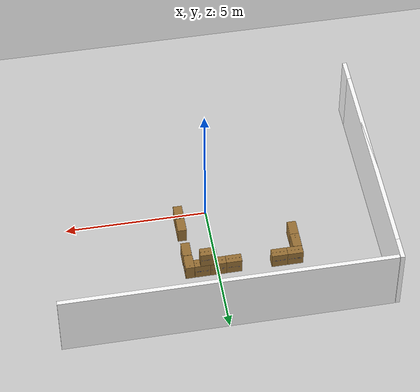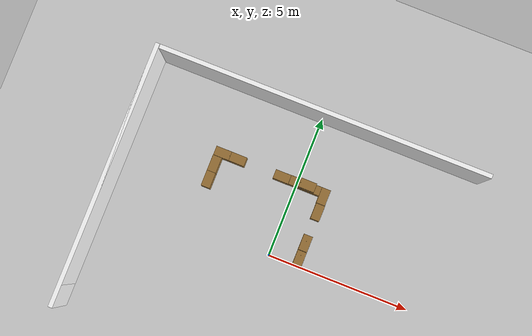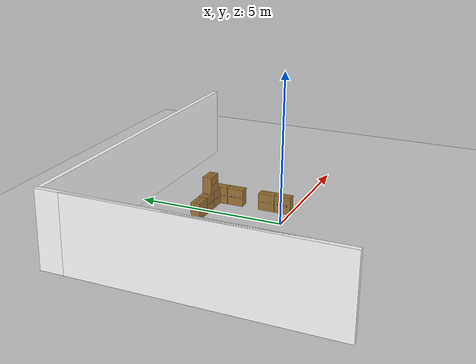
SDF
<sdf version="1.9">
 <world name="default">
  <model name="ground_plane">
   <static>true</static>
   <link name="link">
    <collision name="collision">
     <geometry><plane><normal>0 0 1</normal><size>100 100</size></plane></geometry>
    </collision>
    <visual name="visual">
     <geometry><plane><normal>0 0 1</normal><size>100 100</size></plane></geometry>
     <material>
      <ambient>0.8 0.8 0.8 1</ambient>
      <diffuse>0.8 0.8 0.8 1</diffuse>
      <specular>0.8 0.8 0.8 1</specular>
     </material>
    </visual>
    <inertial>
     <mass>1</mass>
     <inertia><ixx>1</ixx><ixy>0</ixy><ixz>0</ixz><iyy>1</iyy><iyz>0</iyz><izz>1</izz></inertia>
    </inertial>
   </link>
  </model>
  <model name="office_env_w2">
   <pose>0 4.95791 1.25 0 -0 0</pose>
   <link name="Wall_10">
    <visual name="Wall_10_Visual_0">
     <geometry><box><size>11.466 0.15 2.5</size></box></geometry>
     <material><ambient>0.2 0.2 0.2 1</ambient><diffuse>1 1 1 1</diffuse><specular>1 1 1 1</specular></material>
     <meta><layer>0</layer></meta>
    </visual>
    <collision name="Wall_10_Collision_0"><geometry><box><size>11.466 0.15 2.5</size></box></geometry></collision>
    <inertial>
     <mass>1</mass>
     <inertia><ixx>1</ixx><ixy>0</ixy><ixz>0</ixz><iyy>1</iyy><iyz>0</iyz><izz>1</izz></inertia>
    </inertial>
   </link>
   <static>true</static>
  </model>
  <model name="office_env_w_clone">
   <pose>-5.82885 0.866541 1.25 0 -0 1.57</pose>
   <link name="Wall_10">
    <visual name="Wall_10_Visual_0">
     <geometry><box><size>8.324 0.15 2.5</size></box></geometry>
     <material><ambient>0.2 0.2 0.2 1</ambient><diffuse>1 1 1 1</diffuse><specular>1 1 1 1</specular></material>
     <meta><layer>0</layer></meta>
    </visual>
    <collision name="Wall_10_Collision_0"><geometry><box><size>8.324 0.15 2.5</size></box></geometry></collision>
    <inertial>
     <mass>1</mass>
     <inertia><ixx>1</ixx><ixy>0</ixy><ixz>0</ixz><iyy>1</iyy><iyz>0</iyz><izz>1</izz></inertia>
    </inertial>
   </link>
   <static>true</static>
  </model>
  <model name="neobotix_box_3_1_1_1_1_1_1_1">
   <link name="link_1">
    <visual name="visual">
     <geometry>
      <mesh>
       <uri>file:///home/pradheep/iron_ws/src/neo_simulation2/models/neo_office_box/model://neo_office_box/meshes/model.dae</uri>
       <scale>0.1 0.1 0.1</scale>
      </mesh>
     </geometry>
    </visual>
    <collision name="collision">
     <geometry>
      <mesh>
       <uri>file:///home/pradheep/iron_ws/src/neo_simulation2/models/neo_office_box/model://neo_office_box/meshes/model.dae</uri>
       <scale>0.1 0.1 0.1</scale>
      </mesh>
     </geometry>
    </collision>
    <inertial>
     <mass>1</mass>
     <inertia><ixx>1</ixx><ixy>0</ixy><ixz>0</ixz><iyy>1</iyy><iyz>0</iyz><izz>1</izz></inertia>
    </inertial>
   </link>
   <pose>1.00198 0.272766 0.2899 0 -0 0</pose>
   <static>false</static>
  </model>
  <model name="neobotix_box_3_1_1_1_1_1_1_1_2_1">
   <link name="link_1">
    <visual name="visual">
     <geometry>
      <mesh>
       <uri>file:///home/pradheep/iron_ws/src/neo_simulation2/models/neo_office_box/model://neo_office_box/meshes/model.dae</uri>
       <scale>0.1 0.1 0.1</scale>
      </mesh>
     </geometry>
    </visual>
    <collision name="collision">
     <geometry>
      <mesh>
       <uri>file:///home/pradheep/iron_ws/src/neo_simulation2/models/neo_office_box/model://neo_office_box/meshes/model.dae</uri>
       <scale>0.1 0.1 0.1</scale>
      </mesh>
     </geometry>
    </collision>
    <inertial>
     <mass>1</mass>
     <inertia><ixx>1</ixx><ixy>0</ixy><ixz>0</ixz><iyy>1</iyy><iyz>0</iyz><izz>1</izz></inertia>
    </inertial>
   </link>
   <pose>1.00198 0.838156 0.2899 0 -0 0</pose>
   <static>false</static>
  </model>
  <model name="neobotix_box_3_1_1_1_1_1_1_1_2_2">
   <link name="link_1">
    <visual name="visual">
     <geometry>
      <mesh>
       <uri>file:///home/pradheep/iron_ws/src/neo_simulation2/models/neo_office_box/model://neo_office_box/meshes/model.dae</uri>
       <scale>0.1 0.1 0.1</scale>
      </mesh>
     </geometry>
    </visual>
    <collision name="collision">
     <geometry>
      <mesh>
       <uri>file:///home/pradheep/iron_ws/src/neo_simulation2/models/neo_office_box/model://neo_office_box/meshes/model.dae</uri>
       <scale>0.1 0.1 0.1</scale>
      </mesh>
     </geometry>
    </collision>
    <inertial>
     <mass>1</mass>
     <inertia><ixx>1</ixx><ixy>0</ixy><ixz>0</ixz><iyy>1</iyy><iyz>0</iyz><izz>1</izz></inertia>
    </inertial>
   </link>
   <pose>1.00149 1.95419 0.2899 0 -0 0</pose>
   <static>false</static>
  </model>
  <model name="neobotix_box_3_1_1_1_1_1_1_1_2_2_1">
   <link name="link_1">
    <visual name="visual">
     <geometry>
      <mesh>
       <uri>file:///home/pradheep/iron_ws/src/neo_simulation2/models/neo_office_box/model://neo_office_box/meshes/model.dae</uri>
       <scale>0.1 0.1 0.1</scale>
      </mesh>
     </geometry>
    </visual>
    <collision name="collision">
     <geometry>
      <mesh>
       <uri>file:///home/pradheep/iron_ws/src/neo_simulation2/models/neo_office_box/model://neo_office_box/meshes/model.dae</uri>
       <scale>0.1 0.1 0.1</scale>
      </mesh>
     </geometry>
    </collision>
    <inertial>
     <mass>1</mass>
     <inertia><ixx>1</ixx><ixy>0</ixy><ixz>0</ixz><iyy>1</iyy><iyz>0</iyz><izz>1</izz></inertia>
    </inertial>
   </link>
   <pose>0.993277 2.5178 0.2899 0 -0 0</pose>
   <static>false</static>
  </model>
  <model name="neobotix_box_3_2_1_1">
   <link name="link_1">
    <visual name="visual">
     <geometry>
      <mesh>
       <uri>file:///home/pradheep/iron_ws/src/neo_simulation2/models/neo_office_box/model://neo_office_box/meshes/model.dae</uri>
       <scale>0.1 0.1 0.1</scale>
      </mesh>
     </geometry>
    </visual>
    <collision name="collision">
     <geometry>
      <mesh>
       <uri>file:///home/pradheep/iron_ws/src/neo_simulation2/models/neo_office_box/model://neo_office_box/meshes/model.dae</uri>
       <scale>0.1 0.1 0.1</scale>
      </mesh>
     </geometry>
    </collision>
    <inertial>
     <mass>1</mass>
     <inertia><ixx>1</ixx><ixy>0</ixy><ixz>0</ixz><iyy>1</iyy><iyz>0</iyz><izz>1</izz></inertia>
    </inertial>
   </link>
   <pose>0.351569 2.63743 0.869102 0 -0 1.57</pose>
   <static>false</static>
  </model>
  <model name="neobotix_box_3_2_1_1_1">
   <link name="link_1">
    <visual name="visual">
     <geometry>
      <mesh>
       <uri>file:///home/pradheep/iron_ws/src/neo_simulation2/models/neo_office_box/model://neo_office_box/meshes/model.dae</uri>
       <scale>0.1 0.1 0.1</scale>
      </mesh>
     </geometry>
    </visual>
    <collision name="collision">
     <geometry>
      <mesh>
       <uri>file:///home/pradheep/iron_ws/src/neo_simulation2/models/neo_office_box/model://neo_office_box/meshes/model.dae</uri>
       <scale>0.1 0.1 0.1</scale>
      </mesh>
     </geometry>
    </collision>
    <inertial>
     <mass>1</mass>
     <inertia><ixx>1</ixx><ixy>0</ixy><ixz>0</ixz><iyy>1</iyy><iyz>0</iyz><izz>1</izz></inertia>
    </inertial>
   </link>
   <pose>0.004919 2.63842 0.294325 0 -0 1.57</pose>
   <static>false</static>
  </model>
  <model name="neobotix_box_3_2_1_1_1_1">
   <link name="link_1">
    <visual name="visual">
     <geometry>
      <mesh>
       <uri>file:///home/pradheep/iron_ws/src/neo_simulation2/models/neo_office_box/model://neo_office_box/meshes/model.dae</uri>
       <scale>0.1 0.1 0.1</scale>
      </mesh>
     </geometry>
    </visual>
    <collision name="collision">
     <geometry>
      <mesh>
       <uri>file:///home/pradheep/iron_ws/src/neo_simulation2/models/neo_office_box/model://neo_office_box/meshes/model.dae</uri>
       <scale>0.1 0.1 0.1</scale>
      </mesh>
     </geometry>
    </collision>
    <inertial>
     <mass>1</mass>
     <inertia><ixx>1</ixx><ixy>0</ixy><ixz>0</ixz><iyy>1</iyy><iyz>0</iyz><izz>1</izz></inertia>
    </inertial>
   </link>
   <pose>-2.15716 2.63489 0.294325 0 -0 1.57</pose>
   <static>false</static>
  </model>
  <model name="neobotix_box_3_1_1_1_1_2">
   <link name="link_1">
    <visual name="visual">
     <geometry>
      <mesh>
       <uri>file:///home/pradheep/iron_ws/src/neo_simulation2/models/neo_office_box/model://neo_office_box/meshes/model.dae</uri>
       <scale>0.1 0.1 0.1</scale>
      </mesh>
     </geometry>
    </visual>
    <collision name="collision">
     <geometry>
      <mesh>
       <uri>file:///home/pradheep/iron_ws/src/neo_simulation2/models/neo_office_box/model://neo_office_box/meshes/model.dae</uri>
       <scale>0.1 0.1 0.1</scale>
      </mesh>
     </geometry>
    </collision>
    <inertial>
     <mass>1</mass>
     <inertia><ixx>1</ixx><ixy>0</ixy><ixz>0</ixz><iyy>1</iyy><iyz>0</iyz><izz>1</izz></inertia>
    </inertial>
   </link>
   <pose>-2.83415 1.63907 0.2899 0 -0 0</pose>
   <static>false</static>
  </model>
  <model name="neobotix_box_3_2_1_1_1_1_1">
   <link name="link_1">
    <visual name="visual">
     <geometry>
      <mesh>
       <uri>file:///home/pradheep/iron_ws/src/neo_simulation2/models/neo_office_box/model://neo_office_box/meshes/model.dae</uri>
       <scale>0.1 0.1 0.1</scale>
      </mesh>
     </geometry>
    </visual>
    <collision name="collision">
     <geometry>
      <mesh>
       <uri>file:///home/pradheep/iron_ws/src/neo_simulation2/models/neo_office_box/model://neo_office_box/meshes/model.dae</uri>
       <scale>0.1 0.1 0.1</scale>
      </mesh>
     </geometry>
    </collision>
    <inertial>
     <mass>1</mass>
     <inertia><ixx>1</ixx><ixy>0</ixy><ixz>0</ixz><iyy>1</iyy><iyz>0</iyz><izz>1</izz></inertia>
    </inertial>
   </link>
   <pose>-0.553211 2.6336 0.294325 0 -0 1.57</pose>
   <static>false</static>
  </model>
  <model name="neobotix_box_3_2_1_1_1_1_2">
   <link name="link_1">
    <visual name="visual">
     <geometry>
      <mesh>
       <uri>file:///home/pradheep/iron_ws/src/neo_simulation2/models/neo_office_box/model://neo_office_box/meshes/model.dae</uri>
       <scale>0.1 0.1 0.1</scale>
      </mesh>
     </geometry>
    </visual>
    <collision name="collision">
     <geometry>
      <mesh>
       <uri>file:///home/pradheep/iron_ws/src/neo_simulation2/models/neo_office_box/model://neo_office_box/meshes/model.dae</uri>
       <scale>0.1 0.1 0.1</scale>
      </mesh>
     </geometry>
    </collision>
    <inertial>
     <mass>1</mass>
     <inertia><ixx>1</ixx><ixy>0</ixy><ixz>0</ixz><iyy>1</iyy><iyz>0</iyz><izz>1</izz></inertia>
    </inertial>
   </link>
   <pose>-2.70912 2.63532 0.294325 0 -0 1.57</pose>
   <static>false</static>
  </model>
  <model name="neobotix_box_3_1_1_1_1_2_4">
   <link name="link_1">
    <visual name="visual">
     <geometry>
      <mesh>
       <uri>file:///home/pradheep/iron_ws/src/neo_simulation2/models/neo_office_box/model://neo_office_box/meshes/model.dae</uri>
       <scale>0.1 0.1 0.1</scale>
      </mesh>
     </geometry>
    </visual>
    <collision name="collision">
     <geometry>
      <mesh>
       <uri>file:///home/pradheep/iron_ws/src/neo_simulation2/models/neo_office_box/model://neo_office_box/meshes/model.dae</uri>
       <scale>0.1 0.1 0.1</scale>
      </mesh>
     </geometry>
    </collision>
    <inertial>
     <mass>1</mass>
     <inertia><ixx>1</ixx><ixy>0</ixy><ixz>0</ixz><iyy>1</iyy><iyz>0</iyz><izz>1</izz></inertia>
    </inertial>
   </link>
   <pose>-2.83415 2.19461 0.2899 0 -0 0</pose>
   <static>false</static>
  </model>
  <model name="neobotix_box_3_2_1_1_3">
   <link name="link_1">
    <visual name="visual">
     <geometry>
      <mesh>
       <uri>file:///home/pradheep/iron_ws/src/neo_simulation2/models/neo_office_box/model://neo_office_box/meshes/model.dae</uri>
       <scale>0.1 0.1 0.1</scale>
      </mesh>
     </geometry>
    </visual>
    <collision name="collision">
     <geometry>
      <mesh>
       <uri>file:///home/pradheep/iron_ws/src/neo_simulation2/models/neo_office_box/model://neo_office_box/meshes/model.dae</uri>
       <scale>0.1 0.1 0.1</scale>
      </mesh>
     </geometry>
    </collision>
    <inertial>
     <mass>1</mass>
     <inertia><ixx>1</ixx><ixy>0</ixy><ixz>0</ixz><iyy>1</iyy><iyz>0</iyz><izz>1</izz></inertia>
    </inertial>
   </link>
   <pose>0.556752 2.63727 0.294325 0 -0 1.57</pose>
   <static>false</static>
  </model>
  <model name="office_env_w_clone_1">
   <pose>-5.82948 0.079903 1.25 0 -0 1.57</pose>
   <link name="Wall_10">
    <visual name="Wall_10_Visual_0">
     <geometry><box><size>8.324 0.15 2.5</size></box></geometry>
     <material><ambient>0.2 0.2 0.2 1</ambient><diffuse>1 1 1 1</diffuse><specular>1 1 1 1</specular></material>
     <meta><layer>0</layer></meta>
    </visual>
    <collision name="Wall_10_Collision_0"><geometry><box><size>8.324 0.15 2.5</size></box></geometry></collision>
    <inertial>
     <mass>1</mass>
     <inertia><ixx>1</ixx><ixy>0</ixy><ixz>0</ixz><iyy>1</iyy><iyz>0</iyz><izz>1</izz></inertia>
    </inertial>
   </link>
   <static>true</static>
  </model>
 </world>
</sdf>
